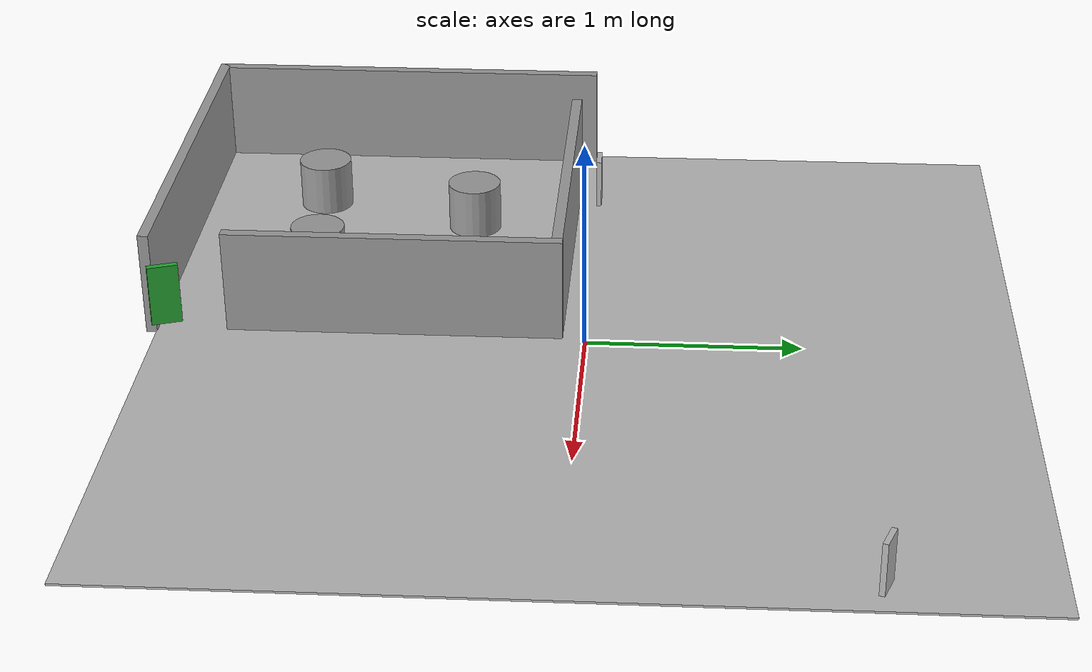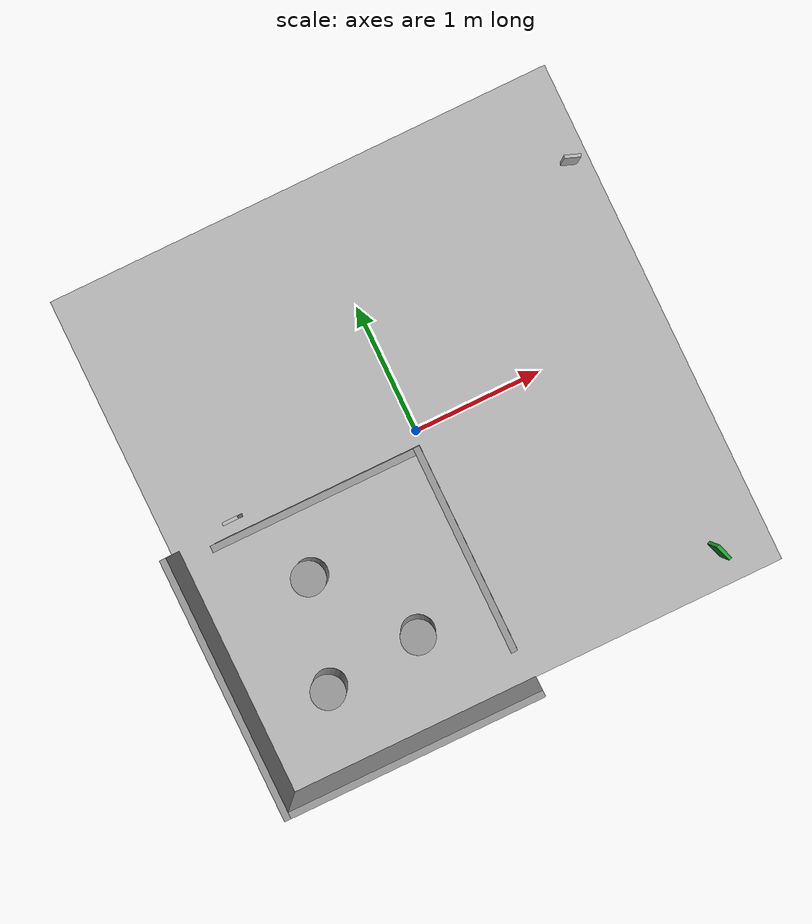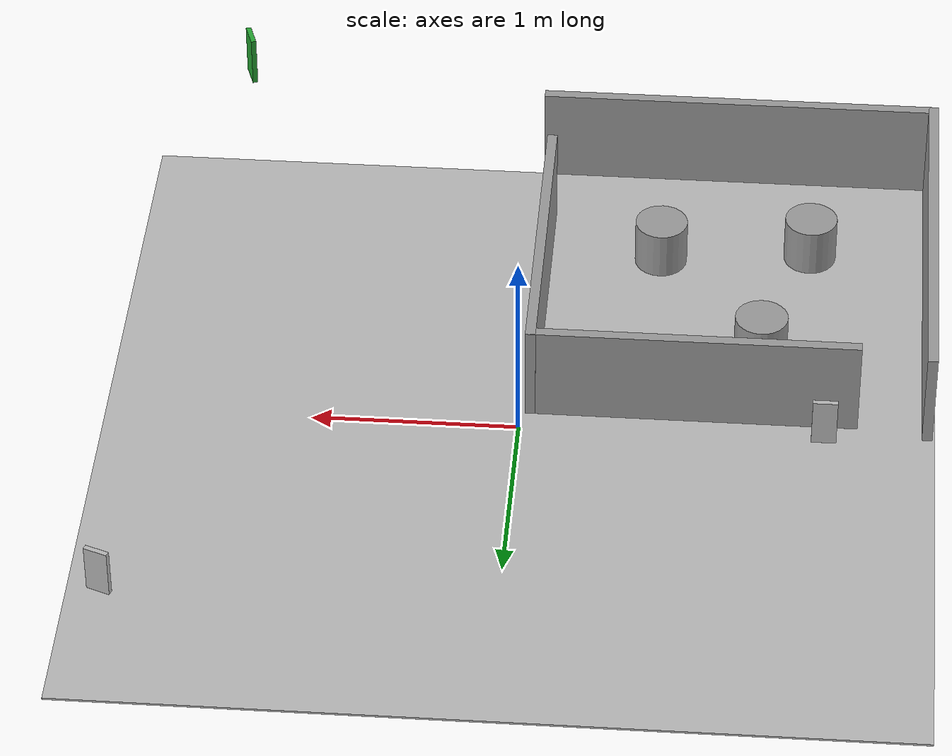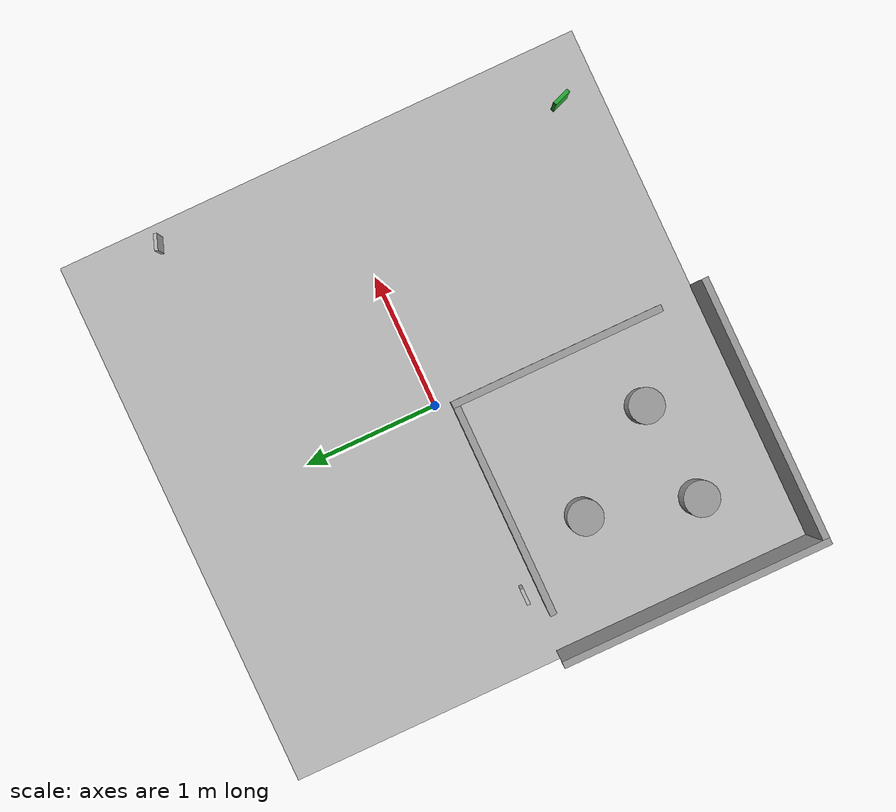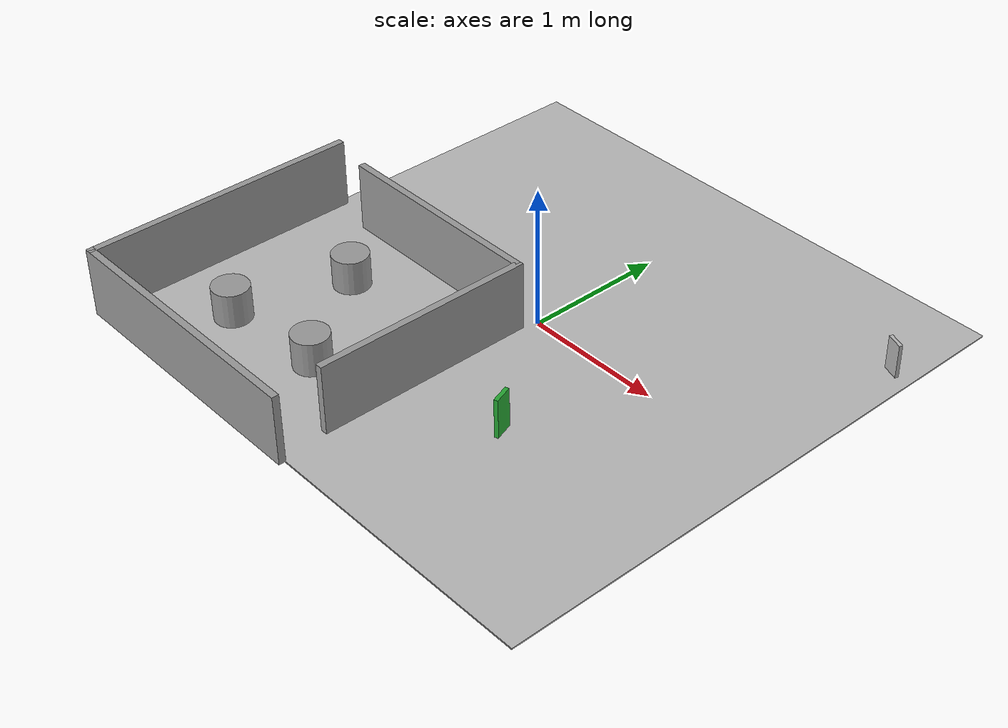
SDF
<sdf version="1.6">
 <world name="default">
  <scene>
   <ambient>0 0 0 1</ambient>
   <shadows>0</shadows>
   <grid>0</grid>
   <background>0.7 0.7 0.7 1</background>
  </scene>
  <light name="sun" type="directional">
   <pose>0 0 10 0 -0 0</pose>
   <diffuse>0.8 0.8 0.8 1</diffuse>
   <specular>0.1 0.1 0.1 1</specular>
   <attenuation>
    <range>1000</range>
    <constant>0.9</constant>
    <linear>0.01</linear>
    <quadratic>0.001</quadratic>
   </attenuation>
   <direction>-0.5 0.5 -1</direction>
  </light>
  <model name="ground">
   <static>1</static>
   <link name="ground">
    <collision name="ground_coll"><geometry><box><size>4 4 0.01</size></box></geometry></collision>
    <visual name="ground_vis">
     <geometry><box><size>4 4 0.01</size></box></geometry>
     <material><script><uri>file://course.material</uri><name>course</name></script></material>
    </visual>
   </link>
  </model>
  <gravity>0 0 -9.8</gravity>
  <magnetic_field>6e-06 2.3e-05 -4.2e-05</magnetic_field>
  <atmosphere type="adiabatic"/>
  <physics name="default_physics" default="0" type="ode">
   <max_step_size>0.001</max_step_size>
   <real_time_factor>1</real_time_factor>
   <real_time_update_rate>1000</real_time_update_rate>
  </physics>
  <spherical_coordinates>
   <surface_model>EARTH_WGS84</surface_model>
   <latitude_deg>0</latitude_deg>
   <longitude_deg>0</longitude_deg>
   <elevation>0</elevation>
   <heading_deg>0</heading_deg>
  </spherical_coordinates>
  <model name="traffic_light_green">
   <pose>1.43999 -1.56175 1.00133 0 0 -1.23899</pose>
   <link name="box">
    <collision name="collision"><geometry><box><size>0.12 0.025 0.25</size></box></geometry></collision>
    <visual name="visual">
     <geometry><box><size>0.12 0.025 0.25</size></box></geometry>
     <material>
      <script>
       <uri>model://traffic_light_green/materials/scripts</uri>
       <uri>model://traffic_light_green/materials/textures</uri>
       <name>traffic_light_green</name>
      </script>
     </material>
    </visual>
    <inertial>
     <inertia><ixx>1</ixx><ixy>0</ixy><ixz>0</ixz><iyy>1</iyy><iyz>0</iyz><izz>1</izz></inertia>
     <mass>1</mass>
    </inertial>
   </link>
  </model>
  <model name="traffic_parking">
   <pose>1.84664 1.27709 0.125 0 0 -0.356081</pose>
   <link name="box">
    <collision name="collision"><geometry><box><size>0.12 0.025 0.25</size></box></geometry></collision>
    <visual name="visual">
     <geometry><box><size>0.12 0.025 0.25</size></box></geometry>
     <material>
      <script>
       <uri>model://traffic_parking/materials/scripts</uri>
       <uri>model://traffic_parking/materials/textures</uri>
       <name>traffic_parking</name>
      </script>
     </material>
    </visual>
    <inertial>
     <inertia><ixx>1</ixx><ixy>0</ixy><ixz>0</ixz><iyy>1</iyy><iyz>0</iyz><izz>1</izz></inertia>
     <mass>1</mass>
    </inertial>
   </link>
  </model>
  <model name="traffic_tunnel">
   <pose>-1.46808 -0.007378 0.125 0 -0 0</pose>
   <link name="box">
    <collision name="collision"><geometry><box><size>0.12 0.025 0.25</size></box></geometry></collision>
    <visual name="visual">
     <geometry><box><size>0.12 0.025 0.25</size></box></geometry>
     <material>
      <script>
       <uri>model://traffic_tunnel/materials/scripts</uri>
       <uri>model://traffic_tunnel/materials/textures</uri>
       <name>traffic_tunnel</name>
      </script>
     </material>
    </visual>
    <inertial>
     <inertia><ixx>1</ixx><ixy>0</ixy><ixz>0</ixz><iyy>1</iyy><iyz>0</iyz><izz>1</izz></inertia>
     <mass>1</mass>
    </inertial>
   </link>
  </model>
  <model name="tunnel_wall">
   <link name="Wall_12">
    <pose>-0.975 0 0 0 -0 1.5708</pose>
    <visual name="Wall_12_Visual">
     <pose>0 0 0.25 0 -0 0</pose>
     <geometry><box><size>2 0.05 0.5</size></box></geometry>
     <material>
      <script><uri>file://media/materials/scripts/gazebo.material</uri><name>Gazebo/Grey</name></script>
      <ambient>1 1 1 1</ambient>
      <diffuse>0.7 0.7 0.7 1</diffuse>
      <specular>0.01 0.01 0.01 1</specular>
      <emissive>0 0 0 1</emissive>
     </material>
    </visual>
    <collision name="Wall_12_Collision">
     <pose>0 0 0.25 0 -0 0</pose>
     <geometry><box><size>2 0.05 0.5</size></box></geometry>
     <surface>
      <friction>
       <ode><mu>1</mu><mu2>1</mu2><fdir1>0 0 0</fdir1><slip1>0</slip1><slip2>0</slip2></ode>
       <torsional>
        <coefficient>1</coefficient>
        <patch_radius>0</patch_radius>
        <surface_radius>0</surface_radius>
        <use_patch_radius>1</use_patch_radius>
        <ode><slip>0</slip></ode>
       </torsional>
      </friction>
      <bounce><restitution_coefficient>0</restitution_coefficient><threshold>1e+06</threshold></bounce>
      <contact>
       <collide_without_contact>0</collide_without_contact>
       <collide_without_contact_bitmask>1</collide_without_contact_bitmask>
       <collide_bitmask>1</collide_bitmask>
       <ode>
        <soft_cfm>0</soft_cfm>
        <soft_erp>0.2</soft_erp>
        <kp>1e+13</kp>
        <kd>1</kd>
        <max_vel>0.01</max_vel>
        <min_depth>0</min_depth>
       </ode>
       <bullet>
        <split_impulse>1</split_impulse>
        <split_impulse_penetration_threshold>-0.01</split_impulse_penetration_threshold>
        <soft_cfm>0</soft_cfm>
        <soft_erp>0.2</soft_erp>
        <kp>1e+13</kp>
        <kd>1</kd>
       </bullet>
      </contact>
     </surface>
    </collision>
   </link>
   <link name="Wall_14">
    <pose>0 -0.975 0 0 -0 0</pose>
    <visual name="Wall_14_Visual">
     <pose>0 0 0.25 0 -0 0</pose>
     <geometry><box><size>2.00003 0.05 0.5</size></box></geometry>
     <material>
      <script><uri>file://media/materials/scripts/gazebo.material</uri><name>Gazebo/Grey</name></script>
      <ambient>1 1 1 1</ambient>
      <diffuse>0.7 0.7 0.7 1</diffuse>
      <specular>0.01 0.01 0.01 1</specular>
      <emissive>0 0 0 1</emissive>
     </material>
    </visual>
    <collision name="Wall_14_Collision">
     <pose>0 0 0.25 0 -0 0</pose>
     <geometry><box><size>2.00003 0.05 0.5</size></box></geometry>
     <surface>
      <friction>
       <ode><mu>1</mu><mu2>1</mu2><fdir1>0 0 0</fdir1><slip1>0</slip1><slip2>0</slip2></ode>
       <torsional>
        <coefficient>1</coefficient>
        <patch_radius>0</patch_radius>
        <surface_radius>0</surface_radius>
        <use_patch_radius>1</use_patch_radius>
        <ode><slip>0</slip></ode>
       </torsional>
      </friction>
      <bounce><restitution_coefficient>0</restitution_coefficient><threshold>1e+06</threshold></bounce>
      <contact>
       <collide_without_contact>0</collide_without_contact>
       <collide_without_contact_bitmask>1</collide_without_contact_bitmask>
       <collide_bitmask>1</collide_bitmask>
       <ode>
        <soft_cfm>0</soft_cfm>
        <soft_erp>0.2</soft_erp>
        <kp>1e+13</kp>
        <kd>1</kd>
        <max_vel>0.01</max_vel>
        <min_depth>0</min_depth>
       </ode>
       <bullet>
        <split_impulse>1</split_impulse>
        <split_impulse_penetration_threshold>-0.01</split_impulse_penetration_threshold>
        <soft_cfm>0</soft_cfm>
        <soft_erp>0.2</soft_erp>
        <kp>1e+13</kp>
        <kd>1</kd>
       </bullet>
      </contact>
     </surface>
    </collision>
   </link>
   <link name="Wall_16">
    <pose>0.939206 0.155981 0 0 -0 1.5708</pose>
    <inertial>
     <inertia><ixx>nan</ixx><ixy>0</ixy><ixz>0</ixz><iyy>nan</iyy><iyz>0</iyz><izz>nan</izz></inertia>
     <mass>0</mass>
    </inertial>
    <visual name="Wall_16_Visual">
     <pose>0 0 0.25 0 -0 0</pose>
     <geometry><box><size>1.56918 0.05 0.5</size></box></geometry>
     <material>
      <script><uri>file://media/materials/scripts/gazebo.material</uri><name>Gazebo/Grey</name></script>
      <ambient>1 1 1 1</ambient>
      <diffuse>0.7 0.7 0.7 1</diffuse>
      <specular>0.01 0.01 0.01 1</specular>
      <emissive>0 0 0 1</emissive>
     </material>
    </visual>
    <collision name="Wall_16_Collision">
     <pose>0 0 0.25 0 -0 0</pose>
     <geometry><box><size>1.56918 0.05 0.5</size></box></geometry>
     <surface>
      <friction>
       <ode><mu>1</mu><mu2>1</mu2><fdir1>0 0 0</fdir1><slip1>0</slip1><slip2>0</slip2></ode>
       <torsional>
        <coefficient>1</coefficient>
        <patch_radius>0</patch_radius>
        <surface_radius>0</surface_radius>
        <use_patch_radius>1</use_patch_radius>
        <ode><slip>0</slip></ode>
       </torsional>
      </friction>
      <bounce><restitution_coefficient>0</restitution_coefficient><threshold>1e+06</threshold></bounce>
      <contact>
       <collide_without_contact>0</collide_without_contact>
       <collide_without_contact_bitmask>1</collide_without_contact_bitmask>
       <collide_bitmask>1</collide_bitmask>
       <ode>
        <soft_cfm>0</soft_cfm>
        <soft_erp>0.2</soft_erp>
        <kp>1e+13</kp>
        <kd>1</kd>
        <max_vel>0.01</max_vel>
        <min_depth>0</min_depth>
       </ode>
       <bullet>
        <split_impulse>1</split_impulse>
        <split_impulse_penetration_threshold>-0.01</split_impulse_penetration_threshold>
        <soft_cfm>0</soft_cfm>
        <soft_erp>0.2</soft_erp>
        <kp>1e+13</kp>
        <kd>1</kd>
       </bullet>
      </contact>
     </surface>
    </collision>
   </link>
   <link name="Wall_17">
    <pose>0.15 0.915 0 0 -0 3.14159</pose>
    <visual name="Wall_17_Visual">
     <pose>0 0 0.25 0 -0 0</pose>
     <geometry><box><size>1.58 0.05 0.5</size></box></geometry>
     <material>
      <script><uri>file://media/materials/scripts/gazebo.material</uri><name>Gazebo/Grey</name></script>
      <ambient>1 1 1 1</ambient>
      <diffuse>0.7 0.7 0.7 1</diffuse>
      <specular>0.01 0.01 0.01 1</specular>
      <emissive>0 0 0 1</emissive>
     </material>
    </visual>
    <collision name="Wall_17_Collision">
     <pose>0 0 0.25 0 -0 0</pose>
     <geometry><box><size>1.58 0.05 0.5</size></box></geometry>
     <surface>
      <friction>
       <ode><mu>1</mu><mu2>1</mu2><fdir1>0 0 0</fdir1><slip1>0</slip1><slip2>0</slip2></ode>
       <torsional>
        <coefficient>1</coefficient>
        <patch_radius>0</patch_radius>
        <surface_radius>0</surface_radius>
        <use_patch_radius>1</use_patch_radius>
        <ode><slip>0</slip></ode>
       </torsional>
      </friction>
      <bounce><restitution_coefficient>0</restitution_coefficient><threshold>1e+06</threshold></bounce>
      <contact>
       <collide_without_contact>0</collide_without_contact>
       <collide_without_contact_bitmask>1</collide_without_contact_bitmask>
       <collide_bitmask>1</collide_bitmask>
       <ode>
        <soft_cfm>0</soft_cfm>
        <soft_erp>0.2</soft_erp>
        <kp>1e+13</kp>
        <kd>1</kd>
        <max_vel>0.01</max_vel>
        <min_depth>0</min_depth>
       </ode>
       <bullet>
        <split_impulse>1</split_impulse>
        <split_impulse_penetration_threshold>-0.01</split_impulse_penetration_threshold>
        <soft_cfm>0</soft_cfm>
        <soft_erp>0.2</soft_erp>
        <kp>1e+13</kp>
        <kd>1</kd>
       </bullet>
      </contact>
     </surface>
    </collision>
   </link>
   <static>1</static>
   <pose>-0.988379 -1.04603 0.00233 0 -0 0</pose>
  </model>
  <model name="tunnel_occ">
   <link name="link_0_clone_clone">
    <pose>0.42322 -0.212034 0 0 -0 0</pose>
    <inertial>
     <mass>0.0416663</mass>
     <inertia>
      <ixx>0.00098188</ixx>
      <ixy>0</ixy>
      <ixz>0</ixz>
      <iyy>0.00098188</iyy>
      <iyz>0</iyz>
      <izz>0.00046751</izz>
     </inertia>
    </inertial>
    <visual name="visual">
     <geometry><cylinder><radius>0.13</radius><length>0.5</length></cylinder></geometry>
     <material>
      <lighting>1</lighting>
      <script><uri>file://media/materials/scripts/gazebo.material</uri><name>Gazebo/Grey</name></script>
      <ambient>0.3 0.3 0.3 1</ambient>
      <diffuse>0.7 0.7 0.7 1</diffuse>
      <specular>0.01 0.01 0.01 1</specular>
      <emissive>0 0 0 1</emissive>
      <shader type="pixel"><normal_map>__default__</normal_map></shader>
     </material>
    </visual>
    <collision name="collision">
     <geometry><cylinder><radius>0.149803</radius><length>0.46418</length></cylinder></geometry>
     <surface>
      <friction>
       <ode><mu>1</mu><mu2>1</mu2><fdir1>0 0 0</fdir1><slip1>0</slip1><slip2>0</slip2></ode>
       <torsional>
        <coefficient>1</coefficient>
        <patch_radius>0</patch_radius>
        <surface_radius>0</surface_radius>
        <use_patch_radius>1</use_patch_radius>
        <ode><slip>0</slip></ode>
       </torsional>
      </friction>
      <bounce><restitution_coefficient>0</restitution_coefficient><threshold>1e+06</threshold></bounce>
      <contact>
       <collide_without_contact>0</collide_without_contact>
       <collide_without_contact_bitmask>1</collide_without_contact_bitmask>
       <collide_bitmask>1</collide_bitmask>
       <ode>
        <soft_cfm>0</soft_cfm>
        <soft_erp>0.2</soft_erp>
        <kp>1e+13</kp>
        <kd>1</kd>
        <max_vel>0.01</max_vel>
        <min_depth>0</min_depth>
       </ode>
       <bullet>
        <split_impulse>1</split_impulse>
        <split_impulse_penetration_threshold>-0.01</split_impulse_penetration_threshold>
        <soft_cfm>0</soft_cfm>
        <soft_erp>0.2</soft_erp>
        <kp>1e+13</kp>
        <kd>1</kd>
       </bullet>
      </contact>
     </surface>
    </collision>
   </link>
   <link name="link_0_clone_clone_clone">
    <pose>-0.323729 -0.287563 0 0 -0 0</pose>
    <inertial>
     <mass>0.0416663</mass>
     <inertia>
      <ixx>0.00098188</ixx>
      <ixy>0</ixy>
      <ixz>0</ixz>
      <iyy>0.00098188</iyy>
      <iyz>0</iyz>
      <izz>0.00046751</izz>
     </inertia>
    </inertial>
    <visual name="visual">
     <geometry><cylinder><radius>0.13</radius><length>0.5</length></cylinder></geometry>
     <material>
      <lighting>1</lighting>
      <script><uri>file://media/materials/scripts/gazebo.material</uri><name>Gazebo/Grey</name></script>
      <ambient>0.3 0.3 0.3 1</ambient>
      <diffuse>0.7 0.7 0.7 1</diffuse>
      <specular>0.01 0.01 0.01 1</specular>
      <emissive>0 0 0 1</emissive>
      <shader type="pixel"><normal_map>__default__</normal_map></shader>
     </material>
    </visual>
    <collision name="collision">
     <geometry><cylinder><radius>0.149803</radius><length>0.46418</length></cylinder></geometry>
     <surface>
      <friction>
       <ode><mu>1</mu><mu2>1</mu2><fdir1>0 0 0</fdir1><slip1>0</slip1><slip2>0</slip2></ode>
       <torsional>
        <coefficient>1</coefficient>
        <patch_radius>0</patch_radius>
        <surface_radius>0</surface_radius>
        <use_patch_radius>1</use_patch_radius>
        <ode><slip>0</slip></ode>
       </torsional>
      </friction>
      <bounce><restitution_coefficient>0</restitution_coefficient><threshold>1e+06</threshold></bounce>
      <contact>
       <collide_without_contact>0</collide_without_contact>
       <collide_without_contact_bitmask>1</collide_without_contact_bitmask>
       <collide_bitmask>1</collide_bitmask>
       <ode>
        <soft_cfm>0</soft_cfm>
        <soft_erp>0.2</soft_erp>
        <kp>1e+13</kp>
        <kd>1</kd>
        <max_vel>0.01</max_vel>
        <min_depth>0</min_depth>
       </ode>
       <bullet>
        <split_impulse>1</split_impulse>
        <split_impulse_penetration_threshold>-0.01</split_impulse_penetration_threshold>
        <soft_cfm>0</soft_cfm>
        <soft_erp>0.2</soft_erp>
        <kp>1e+13</kp>
        <kd>1</kd>
       </bullet>
      </contact>
     </surface>
    </collision>
   </link>
   <link name="link_0_clone_clone_clone_clone">
    <pose>-0.099492 0.499594 0 0 -0 0</pose>
    <inertial>
     <mass>0.0416663</mass>
     <inertia>
      <ixx>0.00098188</ixx>
      <ixy>0</ixy>
      <ixz>0</ixz>
      <iyy>0.00098188</iyy>
      <iyz>0</iyz>
      <izz>0.00046751</izz>
     </inertia>
    </inertial>
    <visual name="visual">
     <geometry><cylinder><radius>0.13</radius><length>0.5</length></cylinder></geometry>
     <material>
      <lighting>1</lighting>
      <script><uri>file://media/materials/scripts/gazebo.material</uri><name>Gazebo/Grey</name></script>
      <ambient>0.3 0.3 0.3 1</ambient>
      <diffuse>0.7 0.7 0.7 1</diffuse>
      <specular>0.01 0.01 0.01 1</specular>
      <emissive>0 0 0 1</emissive>
      <shader type="pixel"><normal_map>__default__</normal_map></shader>
     </material>
    </visual>
    <collision name="collision">
     <geometry><cylinder><radius>0.149803</radius><length>0.46418</length></cylinder></geometry>
     <surface>
      <friction>
       <ode><mu>1</mu><mu2>1</mu2><fdir1>0 0 0</fdir1><slip1>0</slip1><slip2>0</slip2></ode>
       <torsional>
        <coefficient>1</coefficient>
        <patch_radius>0</patch_radius>
        <surface_radius>0</surface_radius>
        <use_patch_radius>1</use_patch_radius>
        <ode><slip>0</slip></ode>
       </torsional>
      </friction>
      <bounce><restitution_coefficient>0</restitution_coefficient><threshold>1e+06</threshold></bounce>
      <contact>
       <collide_without_contact>0</collide_without_contact>
       <collide_without_contact_bitmask>1</collide_without_contact_bitmask>
       <collide_bitmask>1</collide_bitmask>
       <ode>
        <soft_cfm>0</soft_cfm>
        <soft_erp>0.2</soft_erp>
        <kp>1e+13</kp>
        <kd>1</kd>
        <max_vel>0.01</max_vel>
        <min_depth>0</min_depth>
       </ode>
       <bullet>
        <split_impulse>1</split_impulse>
        <split_impulse_penetration_threshold>-0.01</split_impulse_penetration_threshold>
        <soft_cfm>0</soft_cfm>
        <soft_erp>0.2</soft_erp>
        <kp>1e+13</kp>
        <kd>1</kd>
       </bullet>
      </contact>
     </surface>
    </collision>
   </link>
   <static>1</static>
   <pose>-1.04539 -1.11916 0 0 -0 0</pose>
  </model>
  <light name="user_point_light_0" type="point">
   <pose>-1.53792 -1.54262 1 0 -0 0</pose>
   <diffuse>0.5 0.5 0.5 1</diffuse>
   <specular>0.1 0.1 0.1 1</specular>
   <attenuation>
    <range>20</range>
    <constant>0.5</constant>
    <linear>0.01</linear>
    <quadratic>0.001</quadratic>
   </attenuation>
   <cast_shadows>0</cast_shadows>
   <direction>0 0 -1</direction>
  </light>
  <light name="user_point_light_1" type="point">
   <pose>-0.330167 -0.35289 1 0 -0 0</pose>
   <diffuse>0.5 0.5 0.5 1</diffuse>
   <specular>0.1 0.1 0.1 1</specular>
   <attenuation>
    <range>20</range>
    <constant>0.5</constant>
    <linear>0.01</linear>
    <quadratic>0.001</quadratic>
   </attenuation>
   <cast_shadows>0</cast_shadows>
   <direction>0 0 -1</direction>
  </light>
  <light name="user_point_light_2" type="point">
   <pose>-0.948146 0.604519 1 0 -0 0</pose>
   <diffuse>0.5 0.5 0.5 1</diffuse>
   <specular>0.1 0.1 0.1 1</specular>
   <attenuation>
    <range>20</range>
    <constant>0.5</constant>
    <linear>0.01</linear>
    <quadratic>0.001</quadratic>
   </attenuation>
   <cast_shadows>0</cast_shadows>
   <direction>0 0 -1</direction>
  </light>
  <light name="user_point_light_3" type="point">
   <pose>0.815362 0.405449 1 0 -0 0</pose>
   <diffuse>0.5 0.5 0.5 1</diffuse>
   <specular>0.1 0.1 0.1 1</specular>
   <attenuation>
    <range>20</range>
    <constant>0.5</constant>
    <linear>0.01</linear>
    <quadratic>0.001</quadratic>
   </attenuation>
   <cast_shadows>0</cast_shadows>
   <direction>0 0 -1</direction>
  </light>
  <light name="user_point_light_4" type="point">
   <pose>0.987037 -1.13546 1 0 -0 0</pose>
   <diffuse>0.5 0.5 0.5 1</diffuse>
   <specular>0.1 0.1 0.1 1</specular>
   <attenuation>
    <range>20</range>
    <constant>0.5</constant>
    <linear>0.01</linear>
    <quadratic>0.001</quadratic>
   </attenuation>
   <cast_shadows>0</cast_shadows>
   <direction>0 0 -1</direction>
  </light>
  <light name="user_point_light_5" type="point">
   <pose>1.75856 -1.76167 1 0 -0 0</pose>
   <diffuse>0.5 0.5 0.5 1</diffuse>
   <specular>0.1 0.1 0.1 1</specular>
   <attenuation>
    <range>20</range>
    <constant>0.5</constant>
    <linear>0.01</linear>
    <quadratic>0.001</quadratic>
   </attenuation>
   <cast_shadows>0</cast_shadows>
   <direction>0 0 -1</direction>
  </light>
  <light name="user_point_light_6" type="point">
   <pose>1.63854 1.69565 1 0 -0 0</pose>
   <diffuse>0.5 0.5 0.5 1</diffuse>
   <specular>0.1 0.1 0.1 1</specular>
   <attenuation>
    <range>20</range>
    <constant>0.5</constant>
    <linear>0.01</linear>
    <quadratic>0.001</quadratic>
   </attenuation>
   <cast_shadows>0</cast_shadows>
   <direction>0 0 -1</direction>
  </light>
 </world>
</sdf>
